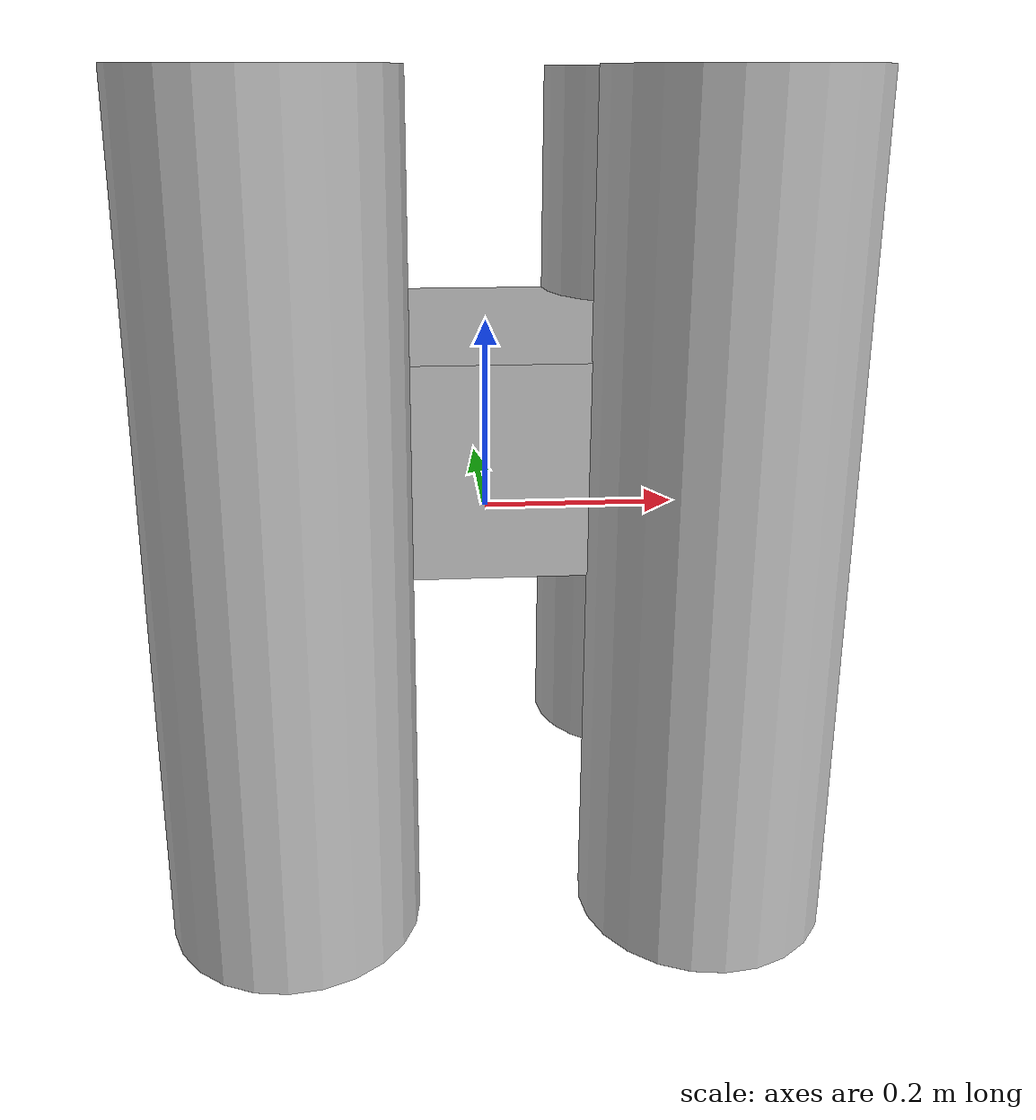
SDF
<?xml version='1.0'?>
<sdf version='1.7'>
    <model name="exort">
        <static>false</static>

<!-- CHASSIS -->

        <link name="chassis">
            <pose>0 0 0.1 0 0 0</pose>
            <collision name="chassis_collision">
                <geometry>
                    <box>
                        <size>0.4 0.4 0.2</size>
                    </box>
                </geometry>
            </collision>
            <visual name="chassis_visual">
                <geometry>
                    <box>
                        <size>0.4 0.4 0.2</size>
                    </box>
                </geometry>
            </visual>
            <inertial>
                <mass value="1"/>
                <inertia ixx="0.0167" ixy="0.0" ixz="0.0" iyx="0.0" iyy="0.0167" iyz="0.0" izx="0.0" izy="0.0" izz="0.0267"/>
            </inertial>
        </link>

<!-- WHEELS -->

        <link name="front_left_wheel">
            <pose>0.2 0.2 0.05 0 0 0</pose>
            <collision name="flw_collision">
                <geometry>
                    <cylinder>
                        <radius>0.12</radius>
                        <length>0.8</length>
                    </cylinder>
                </geometry>
            </collision>
            <visual name="flw_visual">
                <geometry>
                    <cylinder>
                        <radius>0.12</radius>
                        <length>0.8</length>
                    </cylinder>
                </geometry>
            </visual>
            <inertial>
                <mass value="0.1"/>
                <inertia ixx="0.0057" ixy="0.0" ixz="0.0" iyx="0.0" iyy="0.0057" iyz="0.0" izx="0.0" izy="0.0" izz="0.00072"/>
            </inertial>
        </link>

        <link name="front_right_wheel">
            <pose>0.2 -0.2 0.05 0 0 0</pose>
            <collision name="frw_collision">
                <geometry>
                    <cylinder>
                        <radius>0.12</radius>
                        <length>0.8</length>
                    </cylinder>
                </geometry>
            </collision>
            <visual name="frw_visual">
                <geometry>
                    <cylinder>
                        <radius>0.12</radius>
                        <length>0.8</length>
                    </cylinder>
                </geometry>
            </visual>
            <inertial>
                <mass value="0.1"/>
                <inertia ixx="0.0057" ixy="0.0" ixz="0.0" iyx="0.0" iyy="0.0057" iyz="0.0" izx="0.0" izy="0.0" izz="0.00072"/>
            </inertial>
        </link>

        <link name="back_left_wheel">
            <pose>-0.2 0.2 0.05 0 0 0</pose>
            <collision name="blw_collision">
                <geometry>
                    <cylinder>
                        <radius>0.12</radius>
                        <length>0.8</length>
                    </cylinder>
                </geometry>
            </collision>
            <visual name="blw_visual">
                <geometry>
                    <cylinder>
                        <radius>0.12</radius>
                        <length>0.8</length>
                    </cylinder>
                </geometry>
            </visual>
            <inertial>
                <mass value="0.1"/>
                <inertia ixx="0.0057" ixy="0.0" ixz="0.0" iyx="0.0" iyy="0.0057" iyz="0.0" izx="0.0" izy="0.0" izz="0.00072"/>
            </inertial>
        </link>

        <link name="back_right_wheel">
            <pose>-0.2 -0.2 0.05 0 0 0</pose>
            <collision name="brw_collision">
                <geometry>
                    <cylinder>
                        <radius>0.12</radius>
                        <length>0.8</length>
                    </cylinder>
                </geometry>
            </collision>
            <visual name="brw_visual">
                <geometry>
                    <cylinder>
                        <radius>0.12</radius>
                        <length>0.8</length>
                    </cylinder>
                </geometry>
            </visual>
            <inertial>
                <mass value="0.1"/>
                <inertia ixx="0.0057" ixy="0.0" ixz="0.0" iyx="0.0" iyy="0.0057" iyz="0.0" izx="0.0" izy="0.0" izz="0.00072"/>
            </inertial>
        </link>

<!-- JOINTS -->

        <joint name="front_left_wheel_joint" type="revolute">
                <pose>0 0 -0.03 0 0 0</pose>
                <child>front_left_wheel</child>
                <parent>chassis</parent>
                <axis>
                <xyz>1 0 0</xyz>
                </axis>
        </joint>

        <joint name="front_right_wheel_joint" type="revolute">
                <pose>0 0 -0.03 0 0 0</pose>
                <child>front_right_wheel</child>
                <parent>chassis</parent>
                <axis>
                <xyz>1 0 0</xyz>
                </axis>
        </joint>

        <joint name="back_left_wheel_joint" type="revolute">
                <pose>0 0 -0.03 0 0 0</pose>
                <child>back_left_wheel</child>
                <parent>chassis</parent>
                <axis>
                <xyz>1 0 0</xyz>
                </axis>
        </joint>

        <joint name="back_right_wheel_joint" type="revolute">
                <pose>0 0 -0.03 0 0 0</pose>
                <child>back_right_wheel</child>
                <parent>chassis</parent>
                <axis>
                <xyz>1 0 0</xyz>
                </axis>
        </joint>
    </model>
</sdf>
